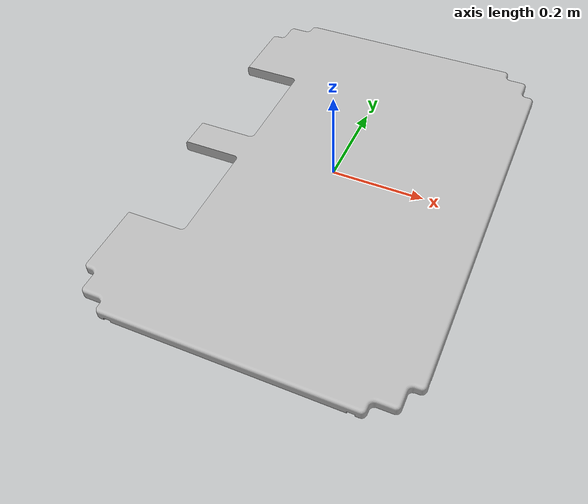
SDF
<?xml version="1.0" ?>
<!-- |    This document was autogenerated by xacro from tri_homecart/homecart_cutting_board.sdf.xacro | -->
<!-- |    EDITING THIS FILE BY HAND IS NOT RECOMMENDED                                 | -->
<sdf version="1.7" xmlns:drake="https://drake.mit.edu">
  <model name="homecart_cutting_board">
    <link name="homecart_cutting_board_link">
      <inertial>
        <pose>0 0 0 0 0 0</pose>
        <mass>1.0</mass>
        <inertia>
          <ixx>100</ixx>
          <ixy>0</ixy>
          <ixz>0</ixz>
          <iyy>100</iyy>
          <iyz>0</iyz>
          <izz>100</izz>
        </inertia>
      </inertial>
      <visual name="visual">
        <pose>0 0 0 0 0 0</pose>
        <geometry>
          <mesh>
            <uri>package://drake_models/tri_homecart/assets/homecart_cutting_board.gltf</uri>
            <scale>1.0 1.0 1.0</scale>
          </mesh>
        </geometry>
      </visual>
      <collision name="collision_compliant">
        <pose>0 0 -0.0127 0 0 0</pose>
        <geometry>
          <box>
            <size>
              0.6816
              0.9864
              0.0254
            </size>
          </box>
        </geometry>
        <drake:proximity_properties>
          <drake:mu_dynamic>0.3</drake:mu_dynamic>
          <drake:mu_static>0.3</drake:mu_static>
          <drake:hydroelastic_modulus>20.0e3</drake:hydroelastic_modulus>
          <drake:hunt_crossley_dissipation>200</drake:hunt_crossley_dissipation>
          <drake:compliant_hydroelastic/>
        </drake:proximity_properties>
      </collision>
      <collision name="collision_rigid">
        <pose>0 0 -0.0127 0 0 0</pose>
        <geometry>
          <box>
            <size>
              0.6816
              0.9864
              0.024399999999999998
            </size>
          </box>
        </geometry>
        <drake:proximity_properties>
          <drake:mu_dynamic>0.3</drake:mu_dynamic>
          <drake:mu_static>0.3</drake:mu_static>
          <drake:hunt_crossley_dissipation>200</drake:hunt_crossley_dissipation>
          <drake:rigid_hydroelastic/>
        </drake:proximity_properties>
      </collision>
    </link>
  </model>
</sdf>
